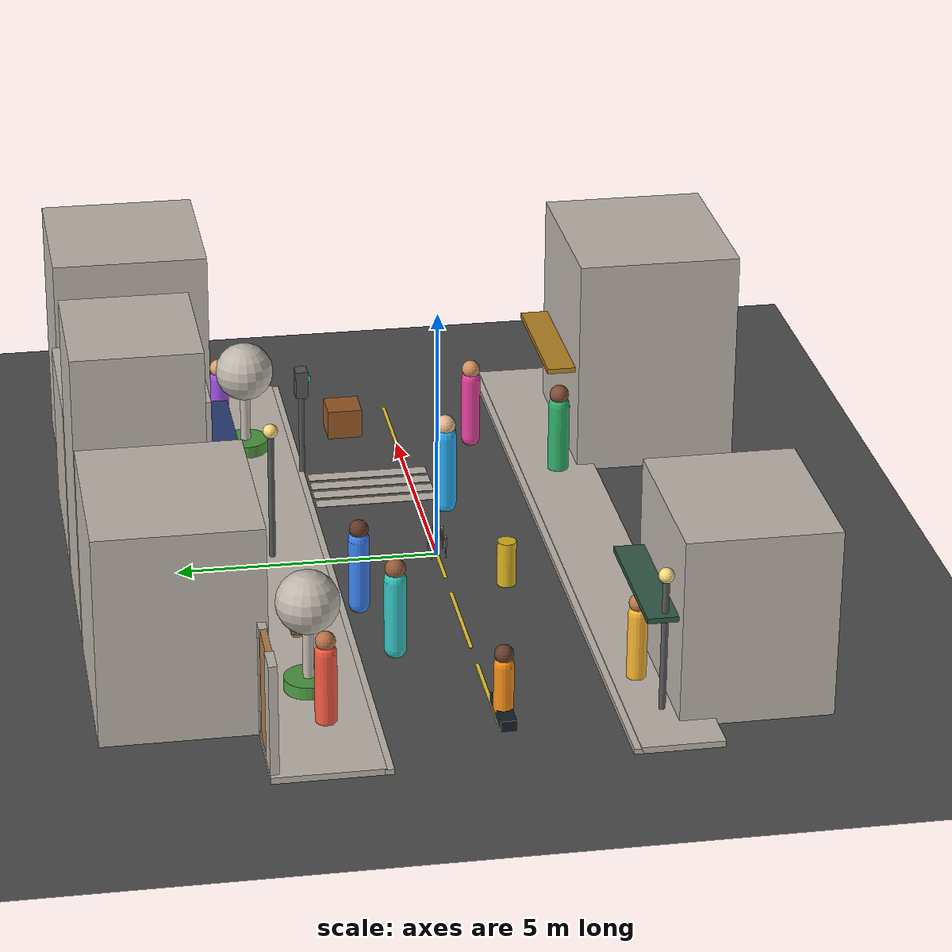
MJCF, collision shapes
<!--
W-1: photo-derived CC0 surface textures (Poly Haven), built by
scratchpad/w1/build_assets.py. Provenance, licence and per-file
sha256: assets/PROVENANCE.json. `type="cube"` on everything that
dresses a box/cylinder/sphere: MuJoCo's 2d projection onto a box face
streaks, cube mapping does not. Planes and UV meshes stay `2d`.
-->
<mujoco model="parcel_city_block">
  <!-- Stylized city block for Go2 skill / RL development. -->
  <include file="../../../third_party/unitree_mujoco/unitree_robots/go2/go2.xml"/>
  <compiler meshdir="../../../third_party/unitree_mujoco/unitree_robots/go2/assets"
    texturedir="assets/textures"
    angle="radian" autolimits="true"/>

  <statistic center="0 0 0.4" extent="8"/>

  <visual>
    <headlight diffuse="0.6 0.6 0.6" ambient="0.35 0.35 0.35" specular="0 0 0"/>
    <rgba haze="0.45 0.5 0.55 1"/>
    <global azimuth="-140" elevation="-18"/>
  </visual>

  <asset>
    <texture type="skybox" builtin="gradient" rgb1="0.45 0.62 0.82" rgb2="0.08 0.12 0.18"
      width="512" height="3072"/>
    <texture type="2d" name="asphalt" file="road_asphalt.png"/>
    <texture type="cube" name="sidewalk" file="sidewalk_concrete.png"/>
    <texture type="cube" name="curb_tex" file="curb_concrete.png"/>
    <texture type="cube" name="crosswalk_tex" file="crosswalk_paint.png"/>
    <texture type="cube" name="brick_tex" file="facade_brick.png"/>
    <texture type="cube" name="beige_tex" file="facade_beige.png"/>
    <texture type="cube" name="plaster_tex" file="facade_plaster.png"/>
    <texture type="cube" name="bench_tex" file="bench_wood.png"/>
    <texture type="cube" name="door_tex" file="door_wood.png"/>
    <texture type="cube" name="metal_tex" file="city_metal.png"/>
    <texture type="cube" name="bark_tex" file="tree_bark.png"/>
    <texture type="cube" name="canopy_tex" file="tree_canopy.png"/>
    <texture type="cube" name="grass_tex" file="grass.png"/>

    <material name="asphalt" texture="asphalt" texuniform="true" texrepeat="8 8" reflectance="0.05"/>
    <material name="sidewalk" texture="sidewalk" texuniform="true" texrepeat="1.6 1.6"
      reflectance="0.08"/>
    <material name="building_a" texture="brick_tex" texuniform="true" texrepeat="0.55 0.55"/>
    <material name="building_b" texture="beige_tex" texuniform="true" texrepeat="0.5 0.5"/>
    <material name="building_c" texture="plaster_tex" texuniform="true" texrepeat="0.5 0.5"/>
    <material name="crosswalk" texture="crosswalk_tex" texuniform="false" texrepeat="1 3"/>
    <material name="bench" texture="bench_tex" texuniform="false" texrepeat="3 1"/>
    <material name="curb" texture="curb_tex" texuniform="true" texrepeat="4 4"/>
    <material name="city_grass" texture="grass_tex" texuniform="true" texrepeat="1.4 1.4"/>
    <material name="city_glass" rgba="0.2 0.42 0.56 1" reflectance="0.35"/>
    <material name="city_metal" texture="metal_tex" texuniform="true" texrepeat="1 1"
      rgba="0.45 0.47 0.5 1"/>
    <material name="entry_wall" texture="plaster_tex" texuniform="true" texrepeat="0.9 0.9"/>
    <material name="door_leaf" texture="door_tex" texuniform="true" texrepeat="0.7 0.7"/>
    <material name="tree_bark" texture="bark_tex" texuniform="true" texrepeat="1.5 1.5"/>
    <material name="tree_canopy" texture="canopy_tex" texuniform="true" texrepeat="1.1 1.1"/>
    <material name="crate_wood" texture="bench_tex" texuniform="true" texrepeat="1.6 1.6"
      rgba="0.86 0.7 0.5 1"/>

    <!-- Storefront fascias. Each is one flat UV quad; the sign lettering,
         glazing, mullions and entrance are baked into the image, so a
         storefront is one geom rather than a dozen. -->
    <texture type="2d" name="shopfront_a" file="storefront_a.png"/>
    <texture type="2d" name="shopfront_b" file="storefront_b.png"/>
    <texture type="2d" name="shopfront_c" file="storefront_c.png"/>
    <texture type="2d" name="shopfront_d" file="storefront_d.png"/>
    <material name="shopfront_a" texture="shopfront_a"/>
    <material name="shopfront_b" texture="shopfront_b"/>
    <material name="shopfront_c" texture="shopfront_c"/>
    <material name="shopfront_d" texture="shopfront_d"/>

    <!-- Pedestrian skins. Four silhouettes x six outfits; nine bodies in this
         scene use nine distinct (mesh, texture) pairs so a detector cannot
         memorise one appearance. -->
    <texture type="2d" name="person_1" file="person_1.png"/>
    <texture type="2d" name="person_2" file="person_2.png"/>
    <texture type="2d" name="person_3" file="person_3.png"/>
    <texture type="2d" name="person_4" file="person_4.png"/>
    <texture type="2d" name="person_5" file="person_5.png"/>
    <texture type="2d" name="person_6" file="person_6.png"/>
    <material name="person_1" texture="person_1"/>
    <material name="person_2" texture="person_2"/>
    <material name="person_3" texture="person_3"/>
    <material name="person_4" texture="person_4"/>
    <material name="person_5" texture="person_5"/>
    <material name="person_6" texture="person_6"/>

    <mesh name="human_a" inertia="shell"
      file="../../../../../src/parcel_robot/scenes/assets/meshes/human_a.obj"/>
    <mesh name="human_b" inertia="shell"
      file="../../../../../src/parcel_robot/scenes/assets/meshes/human_b.obj"/>
    <mesh name="human_c" inertia="shell"
      file="../../../../../src/parcel_robot/scenes/assets/meshes/human_c.obj"/>
    <mesh name="human_d" inertia="shell"
      file="../../../../../src/parcel_robot/scenes/assets/meshes/human_d.obj"/>
    <mesh name="shopfront_1" inertia="shell" scale="3.0 1 2.5"
      file="../../../../../src/parcel_robot/scenes/assets/meshes/panel.obj"/>
    <mesh name="shopfront_2" inertia="shell" scale="2.4 1 2.7"
      file="../../../../../src/parcel_robot/scenes/assets/meshes/panel.obj"/>
    <mesh name="shopfront_3" inertia="shell" scale="2.6 1 2.4"
      file="../../../../../src/parcel_robot/scenes/assets/meshes/panel.obj"/>
    <mesh name="shopfront_4" inertia="shell" scale="2.8 1 2.6"
      file="../../../../../src/parcel_robot/scenes/assets/meshes/panel.obj"/>
    <mesh name="shopfront_5" inertia="shell" scale="2.9 1 2.5"
      file="../../../../../src/parcel_robot/scenes/assets/meshes/panel.obj"/>
    <mesh name="shopfront_6" inertia="shell" scale="3.0 1 2.6"
      file="../../../../../src/parcel_robot/scenes/assets/meshes/panel.obj"/>
  </asset>

  <worldbody>
    <light pos="2 1 6" dir="-0.2 -0.1 -1" diffuse="0.8 0.8 0.75" castshadow="true"/>
    <light pos="-3 -2 5" dir="0.3 0.2 -1" diffuse="0.35 0.35 0.4"/>

    <!-- Road -->
    <geom name="road" type="plane" size="12 12 0.05" material="asphalt" friction="0.9"/>

    <!-- Sidewalk strip -->
    <geom name="sidewalk" type="box" pos="0 3.2 0.06" size="8 1.0 0.06" material="sidewalk"/>
    <geom name="curb" type="box" pos="0 2.15 0.05" size="8 0.08 0.05" material="curb"/>
    <geom name="sidewalk_south" type="box" pos="0 -3.0 0.06" size="8 0.75 0.06" material="sidewalk"/>
    <geom name="curb_south" type="box" pos="0 -2.2 0.05" size="8 0.08 0.05" material="curb"/>

    <!-- Lane markings make heading and motion easier to judge. -->
    <geom name="lane_1" type="box" pos="-5.5 0 0.003" size="1.1 0.035 0.003" rgba="0.92 0.78 0.18 1"/>
    <geom name="lane_2" type="box" pos="-2.7 0 0.003" size="1.1 0.035 0.003" rgba="0.92 0.78 0.18 1"/>
    <geom name="lane_3" type="box" pos="0.1 0 0.003" size="1.1 0.035 0.003" rgba="0.92 0.78 0.18 1"/>
    <geom name="lane_4" type="box" pos="5.7 0 0.003" size="1.1 0.035 0.003" rgba="0.92 0.78 0.18 1"/>

    <!-- Crosswalk stripes -->
    <geom name="xw1" type="box" pos="2.5 0.8 0.002" size="0.15 1.2 0.002" material="crosswalk"/>
    <geom name="xw2" type="box" pos="2.9 0.8 0.002" size="0.15 1.2 0.002" material="crosswalk"/>
    <geom name="xw3" type="box" pos="3.3 0.8 0.002" size="0.15 1.2 0.002" material="crosswalk"/>
    <geom name="xw4" type="box" pos="3.7 0.8 0.002" size="0.15 1.2 0.002" material="crosswalk"/>

    <!-- Buildings -->
    <geom name="bldg_1" type="box" pos="-4.5 5.5 2.0" size="1.8 1.5 2.0" material="building_a"/>
    <geom name="bldg_2" type="box" pos="-1.0 5.8 2.8" size="1.4 1.2 2.8" material="building_b"/>
    <geom name="bldg_3" type="box" pos="2.2 5.6 1.6" size="1.5 1.4 1.6" material="building_c"/>
    <geom name="bldg_4" type="box" pos="5.5 5.4 2.4" size="1.6 1.5 2.4" material="building_a"/>
    <geom name="bldg_5" type="box" pos="-5.5 -4.5 1.8" size="1.7 1.4 1.8" material="building_b"/>
    <geom name="bldg_6" type="box" pos="5.0 -5.0 2.2" size="1.8 1.6 2.2" material="building_c"/>

    <geom name="vis_shopfront_1" type="mesh" mesh="shopfront_1" material="shopfront_a"
      pos="-4.5 3.965 0.06" contype="0" conaffinity="0" density="0"/>
    <geom name="vis_shopfront_2" type="mesh" mesh="shopfront_2" material="shopfront_b"
      pos="-1.0 4.565 0.06" contype="0" conaffinity="0" density="0"/>
    <geom name="vis_shopfront_3" type="mesh" mesh="shopfront_3" material="shopfront_c"
      pos="2.2 4.165 0.06" contype="0" conaffinity="0" density="0"/>
    <geom name="vis_shopfront_4" type="mesh" mesh="shopfront_4" material="shopfront_d"
      pos="5.5 3.865 0.06" contype="0" conaffinity="0" density="0"/>
    <geom name="vis_shopfront_5" type="mesh" mesh="shopfront_5" material="shopfront_b"
      pos="-5.5 -3.065 0.06" euler="0 0 3.14159265" contype="0" conaffinity="0" density="0"/>
    <geom name="vis_shopfront_6" type="mesh" mesh="shopfront_6" material="shopfront_d"
      pos="5.0 -3.365 0.06" euler="0 0 3.14159265" contype="0" conaffinity="0" density="0"/>

    <!-- Awnings, on the four faces with no street tree in front of them. -->
    <geom name="vis_awning_2" type="box" pos="-1.0 4.28 2.14" size="1.15 0.28 0.05"
      rgba="0.62 0.20 0.16 1" contype="0" conaffinity="0" density="0"/>
    <geom name="vis_awning_3" type="box" pos="2.2 3.90 1.90" size="1.25 0.28 0.05"
      rgba="0.16 0.24 0.46 1" contype="0" conaffinity="0" density="0"/>
    <geom name="vis_awning_5" type="box" pos="-5.5 -2.82 1.98" size="1.40 0.28 0.05"
      rgba="0.20 0.36 0.28 1" contype="0" conaffinity="0" density="0"/>
    <geom name="vis_awning_6" type="box" pos="5.0 -3.12 2.06" size="1.45 0.28 0.05"
      rgba="0.72 0.52 0.14 1" contype="0" conaffinity="0" density="0"/>

    <!-- Storefront windows and a small planted plaza. -->
    <geom name="window_1" type="box" pos="-4.5 3.99 1.9" size="0.75 0.015 0.7" material="city_glass"/>
    <geom name="window_2" type="box" pos="-1.0 4.59 1.8" size="0.7 0.015 0.8" material="city_glass"/>
    <geom name="window_3" type="box" pos="2.2 4.19 1.4" size="0.75 0.015 0.65" material="city_glass"/>
    <geom name="window_4" type="box" pos="5.5 3.89 1.8" size="0.75 0.015 0.75" material="city_glass"/>
    <geom name="planter_1" type="cylinder" pos="-5.0 3.15 0.18" size="0.45 0.18" material="city_grass"/>
    <geom name="tree_1" type="cylinder" pos="-5.0 3.15 0.9" size="0.10 0.75" material="tree_bark"/>
    <geom name="tree_top_1" type="sphere" pos="-5.0 3.15 1.85" size="0.58" material="tree_canopy"/>
    <geom name="planter_2" type="cylinder" pos="5.0 3.1 0.18" size="0.45 0.18" material="city_grass"/>
    <geom name="tree_2" type="cylinder" pos="5.0 3.1 0.9" size="0.10 0.75" material="tree_bark"/>
    <geom name="tree_top_2" type="sphere" pos="5.0 3.1 1.85" size="0.58" material="tree_canopy"/>

    <geom name="entry_wall_1" type="box" pos="-7.625 4.12 1.17" size="0.275 0.08 1.05"
      material="entry_wall"/>
    <geom name="door_1" type="box" pos="-6.95 4.12 1.17" size="0.4 0.06 1.05"
      material="door_leaf"/>
    <geom name="entry_wall_2" type="box" pos="-6.425 4.12 1.17" size="0.125 0.08 1.05"
      material="entry_wall"/>

    <!-- Street furniture / crossing signals. -->
    <geom name="lamp_post_1" type="cylinder" pos="0.2 3.15 1.35" size="0.06 1.35" material="city_metal"/>
    <geom name="lamp_head_1" type="sphere" pos="0.2 3.15 2.75" size="0.14" rgba="1 0.86 0.5 1"/>
    <geom name="lamp_post_2" type="cylinder" pos="-6.7 -2.9 1.35" size="0.06 1.35" material="city_metal"/>
    <geom name="lamp_head_2" type="sphere" pos="-6.7 -2.9 2.75" size="0.14" rgba="1 0.86 0.5 1"/>
    <geom name="signal_post" type="cylinder" pos="3.85 2.1 1.0" size="0.055 1.0" material="city_metal"/>
    <geom name="signal_box" type="box" pos="3.85 2.1 2.05" size="0.16 0.12 0.28" material="city_metal"/>
    <geom name="signal_walk" type="sphere" pos="3.85 1.97 2.12" size="0.07" rgba="0.2 0.95 0.45 1"/>

    <!-- Bench on sidewalk -->
    <geom name="bench_seat" type="box" pos="-2.5 3.0 0.28" size="0.7 0.22 0.06" material="bench"/>
    <geom name="bench_back" type="box" pos="-2.5 3.18 0.42" size="0.7 0.05 0.18" material="bench"/>
    <geom name="bench_leg_l" type="box" pos="-3.05 3.0 0.14" size="0.05 0.18 0.14" material="bench"/>
    <geom name="bench_leg_r" type="box" pos="-1.95 3.0 0.14" size="0.05 0.18 0.14" material="bench"/>

    <!-- Explicit navigation obstacles used by simulator telemetry. -->
    <!-- Kept outside the owner's default 1.6 m orbit annulus. -->
    <geom name="obstacle_crate" type="box" pos="5.8 1.0 0.3" size="0.35 0.35 0.3"
      material="crate_wood"/>
    <geom name="obstacle_bollard" type="cylinder" pos="-1.4 -1.1 0.45" size="0.18 0.45"
      rgba="0.85 0.7 0.12 1"/>

    <!-- A movable stand-in for the enrolled owner. Perception backends will
         eventually replace this oracle pose with RGB-D + UWB fusion. -->
    <!-- Default commissioning location has a continuously verified 1.6 m
         orbit corridor clear of every static city fixture. -->
    <body name="owner" mocap="true" pos="2.0 -0.5 0">
      <geom name="owner_body" type="capsule" fromto="0 0 0.1 0 0 1.55" size="0.22"
        contype="0" conaffinity="0" rgba="0.15 0.68 0.95 1" group="4"/>
      <geom name="owner_head" type="sphere" pos="0 0 1.78" size="0.2"
        contype="0" conaffinity="0" rgba="0.92 0.72 0.55 1" group="4"/>
      <geom name="vis_owner" type="mesh" mesh="human_d" material="person_3"
        euler="0 0 -0.85" contype="0" conaffinity="0" density="0"/>
    </body>

    <!-- Lightweight living-city actors. The Python route controller advances
         these mocap bodies deterministically and publishes their tracks. -->
    <body name="pedestrian_1" mocap="true" pos="-6.2 3.0 0">
      <geom name="pedestrian_1_body" type="capsule" fromto="0 0 0.15 0 0 1.48" size="0.20"
        contype="0" conaffinity="0" rgba="0.95 0.35 0.25 1" group="4"/>
      <geom name="pedestrian_1_head" type="sphere" pos="0 0 1.7" size="0.18"
        contype="0" conaffinity="0" rgba="0.72 0.45 0.28 1" group="4"/>
      <geom name="vis_pedestrian_1" type="mesh" mesh="human_a" material="person_1"
        euler="0 0 0.62" contype="0" conaffinity="0" density="0"/>
    </body>
    <body name="pedestrian_2" mocap="true" pos="5.7 3.55 0">
      <geom name="pedestrian_2_body" type="capsule" fromto="0 0 0.15 0 0 1.42" size="0.19"
        contype="0" conaffinity="0" rgba="0.62 0.32 0.9 1" group="4"/>
      <geom name="pedestrian_2_head" type="sphere" pos="0 0 1.64" size="0.18"
        contype="0" conaffinity="0" rgba="0.86 0.62 0.44 1" group="4"/>
      <geom name="vis_pedestrian_2" type="mesh" mesh="human_b" material="person_2"
        euler="0 0 2.60" contype="0" conaffinity="0" density="0"/>
    </body>
    <body name="pedestrian_3" mocap="true" pos="3.15 -3.0 0">
      <geom name="pedestrian_3_body" type="capsule" fromto="0 0 0.15 0 0 1.5" size="0.21"
        contype="0" conaffinity="0" rgba="0.18 0.68 0.42 1" group="4"/>
      <geom name="pedestrian_3_head" type="sphere" pos="0 0 1.73" size="0.19"
        contype="0" conaffinity="0" rgba="0.5 0.3 0.2 1" group="4"/>
      <geom name="vis_pedestrian_3" type="mesh" mesh="human_c" material="person_3"
        euler="0 0 -1.20" contype="0" conaffinity="0" density="0"/>
    </body>
    <body name="pedestrian_4" mocap="true" pos="-5.5 -2.7 0">
      <geom name="pedestrian_4_body" type="capsule" fromto="0 0 0.15 0 0 1.38" size="0.18"
        contype="0" conaffinity="0" rgba="0.96 0.7 0.18 1" group="4"/>
      <geom name="pedestrian_4_head" type="sphere" pos="0 0 1.6" size="0.17"
        contype="0" conaffinity="0" rgba="0.72 0.48 0.3 1" group="4"/>
      <geom name="vis_pedestrian_4" type="mesh" mesh="human_d" material="person_4"
        euler="0 0 1.95" contype="0" conaffinity="0" density="0"/>
    </body>
    <body name="pedestrian_5" mocap="true" pos="-2.0 1.8 0">
      <geom name="pedestrian_5_body" type="capsule" fromto="0 0 0.15 0 0 1.46" size="0.20"
        contype="0" conaffinity="0" rgba="0.22 0.5 0.92 1" group="4"/>
      <geom name="pedestrian_5_head" type="sphere" pos="0 0 1.68" size="0.18"
        contype="0" conaffinity="0" rgba="0.38 0.22 0.15 1" group="4"/>
      <geom name="vis_pedestrian_5" type="mesh" mesh="human_a" material="person_5"
        euler="0 0 -2.35" contype="0" conaffinity="0" density="0"/>
    </body>
    <body name="pedestrian_6" mocap="true" pos="4.8 -1.5 0">
      <geom name="pedestrian_6_body" type="capsule" fromto="0 0 0.15 0 0 1.44" size="0.19"
        contype="0" conaffinity="0" rgba="0.9 0.25 0.62 1" group="4"/>
      <geom name="pedestrian_6_head" type="sphere" pos="0 0 1.66" size="0.18"
        contype="0" conaffinity="0" rgba="0.82 0.57 0.38 1" group="4"/>
      <geom name="vis_pedestrian_6" type="mesh" mesh="human_b" material="person_6"
        euler="0 0 0.20" contype="0" conaffinity="0" density="0"/>
    </body>
    <body name="pedestrian_7" mocap="true" pos="-3.8 1.4 0">
      <geom name="pedestrian_7_body" type="capsule" fromto="0 0 0.15 0 0 1.52" size="0.21"
        contype="0" conaffinity="0" rgba="0.2 0.76 0.75 1" group="4"/>
      <geom name="pedestrian_7_head" type="sphere" pos="0 0 1.75" size="0.19"
        contype="0" conaffinity="0" rgba="0.58 0.36 0.22 1" group="4"/>
      <geom name="vis_pedestrian_7" type="mesh" mesh="human_c" material="person_1"
        euler="0 0 3.05" contype="0" conaffinity="0" density="0"/>
    </body>
    <body name="cyclist_1" mocap="true" pos="-7.0 0 0">
      <geom name="cyclist_1_bike" type="box" pos="0 0 0.48" size="0.52 0.14 0.10"
        contype="0" conaffinity="0" rgba="0.08 0.12 0.15 1"/>
      <geom name="cyclist_1_body" type="capsule" fromto="0 0 0.58 0 0 1.4" size="0.18"
        contype="0" conaffinity="0" rgba="0.95 0.55 0.08 1" group="4"/>
      <geom name="cyclist_1_head" type="sphere" pos="0 0 1.62" size="0.17"
        contype="0" conaffinity="0" rgba="0.4 0.25 0.16 1" group="4"/>
      <geom name="vis_cyclist_1" type="mesh" mesh="human_b" material="person_5"
        pos="-0.04 0 0.14" contype="0" conaffinity="0" density="0"/>
    </body>
  </worldbody>
</mujoco>

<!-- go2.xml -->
<mujoco model="go2">
  <compiler angle="radian" meshdir="assets" autolimits="true" />

  <option cone="elliptic" impratio="100" />

  <default>
    <default class="go2">
      <geom friction="0.4" margin="0.001" condim="1"/>
      <joint axis="0 1 0" damping="0.1" armature="0.01" frictionloss="0.2"/>
      <motor ctrlrange="-23.7 23.7"/>
      <default class="abduction">
        <joint axis="1 0 0" range="-1.0472 1.0472"/>
      </default>
      <default class="hip">
        <default class="front_hip">
          <joint range="-1.5708 3.4907"/>
        </default>
        <default class="back_hip">
          <joint range="-0.5236 4.5379"/>
        </default>
      </default>
      <default class="knee">
        <joint range="-2.7227 -0.83776"/>
        <motor ctrlrange="-45.43 45.43"/>
      </default>
      <default class="visual">
        <geom type="mesh" contype="0" conaffinity="0" group="2"/>
      </default>
      <default class="collision">
        <geom group="3"/>
        <default class="foot">
          <geom size="0.022" pos="-0.002 0 -0.213" priority="1" condim="6"
            friction="0.4 0.02 0.01"/>
        </default>
      </default>
    </default>
  </default>

  <asset>
    <material name="metal" rgba=".9 .95 .95 1" />
    <material name="black" rgba="0 0 0 1" />
    <material name="white" rgba="1 1 1 1" />
    <material name="gray" rgba="0.671705 0.692426 0.774270 1" />

    <mesh file="base_0.obj" />
    <mesh file="base_1.obj" />
    <mesh file="base_2.obj" />
    <mesh file="base_3.obj" />
    <mesh file="base_4.obj" />
    <mesh file="hip_0.obj" />
    <mesh file="hip_1.obj" />
    <mesh file="thigh_0.obj" />
    <mesh file="thigh_1.obj" />
    <mesh file="thigh_mirror_0.obj" />
    <mesh file="thigh_mirror_1.obj" />
    <mesh file="calf_0.obj" />
    <mesh file="calf_1.obj" />
    <mesh file="calf_mirror_0.obj" />
    <mesh file="calf_mirror_1.obj" />
    <mesh file="foot.obj" />
  </asset>

  <worldbody>
    <body name="base_link" pos="0 0 0.445" childclass="go2">
      <inertial pos="0.021112 0 -0.005366" quat="-0.000543471 0.713435 -0.00173769 0.700719"
        mass="6.921"
        diaginertia="0.107027 0.0980771 0.0244531" />
      <freejoint />
      <geom mesh="base_0" material="black" class="visual" />
      <geom mesh="base_1" material="black" class="visual" />
      <geom mesh="base_2" material="black" class="visual" />
      <geom mesh="base_3" material="white" class="visual" />
      <geom mesh="base_4" material="gray" class="visual" />
      <geom size="0.1881 0.04675 0.057" type="box" class="collision" />
      <geom size="0.05 0.045" pos="0.285 0 0.01" type="cylinder" class="collision" />
      <geom size="0.047" pos="0.293 0 -0.06" class="collision" />
      <site name="imu" pos="-0.02557 0 0.04232" />
      <camera
        name="Gurukul_depth"
        pos="0.33 0 0.08"
        xyaxes="0 -1 0 0.3420201433 0 0.9396926208"
        resolution="106 60"
        focal="0.11041 0.11041"
        sensorsize="0.20955 0.12240"
        principalpixel="0 0"
      />
      <body name="FL_hip" pos="0.1934 0.0465 0">
        <inertial pos="-0.0054 0.00194 -0.000105" quat="0.497014 0.499245 0.505462 0.498237"
          mass="0.678"
          diaginertia="0.00088403 0.000596003 0.000479967" />
        <joint name="FL_hip_joint" class="abduction" />
        <geom mesh="hip_0" material="metal" class="visual" />
        <geom mesh="hip_1" material="gray" class="visual" />
        <geom size="0.046 0.02" pos="0 0.08 0" quat="1 1 0 0" type="cylinder" class="collision" />
        <body name="FL_thigh" pos="0 0.0955 0">
          <inertial pos="-0.00374 -0.0223 -0.0327" quat="0.829533 0.0847635 -0.0200632 0.551623"
            mass="1.152"
            diaginertia="0.00594973 0.00584149 0.000878787" />
          <joint name="FL_thigh_joint" class="front_hip" />
          <geom mesh="thigh_0" material="metal" class="visual" />
          <geom mesh="thigh_1" material="gray" class="visual" />
          <geom size="0.1065 0.01225 0.017" pos="0 0 -0.1065" quat="0.707107 0 0.707107 0"
            type="box" class="collision" />
          <body name="FL_calf" pos="0 0 -0.213">
            <inertial pos="0.00629595 -0.000622121 -0.141417"
              quat="0.710672 0.00154099 -0.00450087 0.703508"
              mass="0.241352" diaginertia="0.0014901 0.00146356 5.31397e-05" />
            <joint name="FL_calf_joint" class="knee" />
            <geom mesh="calf_0" material="gray" class="visual" />
            <geom mesh="calf_1" material="black" class="visual" />
            <geom size="0.012 0.06" pos="0.008 0 -0.06" quat="0.994493 0 -0.104807 0"
              type="cylinder" class="collision" />
            <geom size="0.011 0.0325" pos="0.02 0 -0.148" quat="0.999688 0 0.0249974 0"
              type="cylinder" class="collision" />
            <geom pos="0 0 -0.213" mesh="foot" class="visual" material="black" />
            <geom name="FL" class="foot" />
            <body name="FL_foot" pos="0 0 -0.213" />
          </body>
        </body>
      </body>
      <body name="FR_hip" pos="0.1934 -0.0465 0">
        <inertial pos="-0.0054 -0.00194 -0.000105" quat="0.498237 0.505462 0.499245 0.497014"
          mass="0.678"
          diaginertia="0.00088403 0.000596003 0.000479967" />
        <joint name="FR_hip_joint" class="abduction" />
        <geom mesh="hip_0" material="metal" class="visual" quat="4.63268e-05 1 0 0" />
        <geom mesh="hip_1" material="gray" class="visual" quat="4.63268e-05 1 0 0" />
        <geom size="0.046 0.02" pos="0 -0.08 0" quat="0.707107 0.707107 0 0" type="cylinder"
          class="collision" />
        <body name="FR_thigh" pos="0 -0.0955 0">
          <inertial pos="-0.00374 0.0223 -0.0327" quat="0.551623 -0.0200632 0.0847635 0.829533"
            mass="1.152"
            diaginertia="0.00594973 0.00584149 0.000878787" />
          <joint name="FR_thigh_joint" class="front_hip" />
          <geom mesh="thigh_mirror_0" material="metal" class="visual" />
          <geom mesh="thigh_mirror_1" material="gray" class="visual" />
          <geom size="0.1065 0.01225 0.017" pos="0 0 -0.1065" quat="0.707107 0 0.707107 0"
            type="box" class="collision" />
          <body name="FR_calf" pos="0 0 -0.213">
            <inertial pos="0.00629595 0.000622121 -0.141417"
              quat="0.703508 -0.00450087 0.00154099 0.710672"
              mass="0.241352" diaginertia="0.0014901 0.00146356 5.31397e-05" />
            <joint name="FR_calf_joint" class="knee" />
            <geom mesh="calf_mirror_0" material="gray" class="visual" />
            <geom mesh="calf_mirror_1" material="black" class="visual" />
            <geom size="0.013 0.06" pos="0.01 0 -0.06" quat="0.995004 0 -0.0998334 0"
              type="cylinder" class="collision" />
            <geom size="0.011 0.0325" pos="0.02 0 -0.148" quat="0.999688 0 0.0249974 0"
              type="cylinder" class="collision" />
            <geom pos="0 0 -0.213" mesh="foot" class="visual" material="black" />
            <geom name="FR" class="foot" />
            <body name="FR_foot" pos="0 0 -0.213" />
          </body>
        </body>
      </body>
      <body name="RL_hip" pos="-0.1934 0.0465 0">
        <inertial pos="0.0054 0.00194 -0.000105" quat="0.505462 0.498237 0.497014 0.499245"
          mass="0.678"
          diaginertia="0.00088403 0.000596003 0.000479967" />
        <joint name="RL_hip_joint" class="abduction" />
        <geom mesh="hip_0" material="metal" class="visual" quat="4.63268e-05 0 1 0" />
        <geom mesh="hip_1" material="gray" class="visual" quat="4.63268e-05 0 1 0" />
        <geom size="0.046 0.02" pos="0 0.08 0" quat="0.707107 0.707107 0 0" type="cylinder"
          class="collision" />
        <body name="RL_thigh" pos="0 0.0955 0">
          <inertial pos="-0.00374 -0.0223 -0.0327" quat="0.829533 0.0847635 -0.0200632 0.551623"
            mass="1.152"
            diaginertia="0.00594973 0.00584149 0.000878787" />
          <joint name="RL_thigh_joint" class="back_hip" />
          <geom mesh="thigh_0" material="metal" class="visual" />
          <geom mesh="thigh_1" material="gray" class="visual" />
          <geom size="0.1065 0.01225 0.017" pos="0 0 -0.1065" quat="0.707107 0 0.707107 0"
            type="box" class="collision" />
          <body name="RL_calf" pos="0 0 -0.213">
            <inertial pos="0.00629595 -0.000622121 -0.141417"
              quat="0.710672 0.00154099 -0.00450087 0.703508"
              mass="0.241352" diaginertia="0.0014901 0.00146356 5.31397e-05" />
            <joint name="RL_calf_joint" class="knee" />
            <geom mesh="calf_0" material="gray" class="visual" />
            <geom mesh="calf_1" material="black" class="visual" />
            <geom size="0.013 0.06" pos="0.01 0 -0.06" quat="0.995004 0 -0.0998334 0"
              type="cylinder" class="collision" />
            <geom size="0.011 0.0325" pos="0.02 0 -0.148" quat="0.999688 0 0.0249974 0"
              type="cylinder" class="collision" />
            <geom pos="0 0 -0.213" mesh="foot" class="visual" material="black" />
            <geom name="RL" class="foot" />
            <body name="RL_foot" pos="0 0 -0.213" />
          </body>
        </body>
      </body>
      <body name="RR_hip" pos="-0.1934 -0.0465 0">
        <inertial pos="0.0054 -0.00194 -0.000105" quat="0.499245 0.497014 0.498237 0.505462"
          mass="0.678"
          diaginertia="0.00088403 0.000596003 0.000479967" />
        <joint name="RR_hip_joint" class="abduction" />
        <geom mesh="hip_0" material="metal" class="visual"
          quat="2.14617e-09 4.63268e-05 4.63268e-05 -1" />
        <geom mesh="hip_1" material="gray" class="visual"
          quat="2.14617e-09 4.63268e-05 4.63268e-05 -1" />
        <geom size="0.046 0.02" pos="0 -0.08 0" quat="0.707107 0.707107 0 0" type="cylinder"
          class="collision" />
        <body name="RR_thigh" pos="0 -0.0955 0">
          <inertial pos="-0.00374 0.0223 -0.0327" quat="0.551623 -0.0200632 0.0847635 0.829533"
            mass="1.152"
            diaginertia="0.00594973 0.00584149 0.000878787" />
          <joint name="RR_thigh_joint" class="back_hip" />
          <geom mesh="thigh_mirror_0" material="metal" class="visual" />
          <geom mesh="thigh_mirror_1" material="gray" class="visual" />
          <geom size="0.1065 0.01225 0.017" pos="0 0 -0.1065" quat="0.707107 0 0.707107 0"
            type="box" class="collision" />
          <body name="RR_calf" pos="0 0 -0.213">
            <inertial pos="0.00629595 0.000622121 -0.141417"
              quat="0.703508 -0.00450087 0.00154099 0.710672"
              mass="0.241352" diaginertia="0.0014901 0.00146356 5.31397e-05" />
            <joint name="RR_calf_joint" class="knee" />
            <geom mesh="calf_mirror_0" material="gray" class="visual" />
            <geom mesh="calf_mirror_1" material="black" class="visual" />
            <geom size="0.013 0.06" pos="0.01 0 -0.06" quat="0.995004 0 -0.0998334 0"
              type="cylinder" class="collision" />
            <geom size="0.011 0.0325" pos="0.02 0 -0.148" quat="0.999688 0 0.0249974 0"
              type="cylinder" class="collision" />
            <geom pos="0 0 -0.213" mesh="foot" class="visual" material="black" />
            <geom name="RR" class="foot" />
            <body name="RR_foot" pos="0 0 -0.213" />
          </body>
        </body>
      </body>
    </body>
  </worldbody>

  <actuator>
    <motor class="abduction" name="FR_hip" joint="FR_hip_joint" />
    <motor class="hip" name="FR_thigh" joint="FR_thigh_joint" />
    <motor class="knee" name="FR_calf" joint="FR_calf_joint" />
    <motor class="abduction" name="FL_hip" joint="FL_hip_joint" />
    <motor class="hip" name="FL_thigh" joint="FL_thigh_joint" />
    <motor class="knee" name="FL_calf" joint="FL_calf_joint" />
    <motor class="abduction" name="RR_hip" joint="RR_hip_joint" />
    <motor class="hip" name="RR_thigh" joint="RR_thigh_joint" />
    <motor class="knee" name="RR_calf" joint="RR_calf_joint" />
    <motor class="abduction" name="RL_hip" joint="RL_hip_joint" />
    <motor class="hip" name="RL_thigh" joint="RL_thigh_joint" />
    <motor class="knee" name="RL_calf" joint="RL_calf_joint" />
  </actuator>

  <sensor>
    <jointpos name="FR_hip_pos" joint="FR_hip_joint" />
    <jointpos name="FR_thigh_pos" joint="FR_thigh_joint" />
    <jointpos name="FR_calf_pos" joint="FR_calf_joint" />
    <jointpos name="FL_hip_pos" joint="FL_hip_joint" />
    <jointpos name="FL_thigh_pos" joint="FL_thigh_joint" />
    <jointpos name="FL_calf_pos" joint="FL_calf_joint" />
    <jointpos name="RR_hip_pos" joint="RR_hip_joint" />
    <jointpos name="RR_thigh_pos" joint="RR_thigh_joint" />
    <jointpos name="RR_calf_pos" joint="RR_calf_joint" />
    <jointpos name="RL_hip_pos" joint="RL_hip_joint" />
    <jointpos name="RL_thigh_pos" joint="RL_thigh_joint" />
    <jointpos name="RL_calf_pos" joint="RL_calf_joint" />

    <jointvel name="FR_hip_vel" joint="FR_hip_joint" />
    <jointvel name="FR_thigh_vel" joint="FR_thigh_joint" />
    <jointvel name="FR_calf_vel" joint="FR_calf_joint" />
    <jointvel name="FL_hip_vel" joint="FL_hip_joint" />
    <jointvel name="FL_thigh_vel" joint="FL_thigh_joint" />
    <jointvel name="FL_calf_vel" joint="FL_calf_joint" />
    <jointvel name="RR_hip_vel" joint="RR_hip_joint" />
    <jointvel name="RR_thigh_vel" joint="RR_thigh_joint" />
    <jointvel name="RR_calf_vel" joint="RR_calf_joint" />
    <jointvel name="RL_hip_vel" joint="RL_hip_joint" />
    <jointvel name="RL_thigh_vel" joint="RL_thigh_joint" />
    <jointvel name="RL_calf_vel" joint="RL_calf_joint" />

    <jointactuatorfrc name="FR_hip_torque" joint="FR_hip_joint" noise="0.01" />
    <jointactuatorfrc name="FR_thigh_torque" joint="FR_thigh_joint" noise="0.01" />
    <jointactuatorfrc name="FR_calf_torque" joint="FR_calf_joint" noise="0.01" />
    <jointactuatorfrc name="FL_hip_torque" joint="FL_hip_joint" noise="0.01" />
    <jointactuatorfrc name="FL_thigh_torque" joint="FL_thigh_joint" noise="0.01" />
    <jointactuatorfrc name="FL_calf_torque" joint="FL_calf_joint" noise="0.01" />
    <jointactuatorfrc name="RR_hip_torque" joint="RR_hip_joint" noise="0.01" />
    <jointactuatorfrc name="RR_thigh_torque" joint="RR_thigh_joint" noise="0.01" />
    <jointactuatorfrc name="RR_calf_torque" joint="RR_calf_joint" noise="0.01" />
    <jointactuatorfrc name="RL_hip_torque" joint="RL_hip_joint" noise="0.01" />
    <jointactuatorfrc name="RL_thigh_torque" joint="RL_thigh_joint" noise="0.01" />
    <jointactuatorfrc name="RL_calf_torque" joint="RL_calf_joint" noise="0.01" />

    <framequat name="imu_quat" objtype="site" objname="imu" />
    <gyro name="imu_gyro" site="imu" />
    <accelerometer name="imu_acc" site="imu" />

    <framepos name="frame_pos" objtype="site" objname="imu" />
    <framelinvel name="frame_vel" objtype="site" objname="imu" />
  </sensor>

  <keyframe>
    <key name="home" qpos="0 0 0.27 1 0 0 0 0 0.9 -1.8 0 0.9 -1.8 0 0.9 -1.8 0 0.9 -1.8"
      ctrl="0 0.9 -1.8 0 0.9 -1.8 0 0.9 -1.8 0 0.9 -1.8" />
  </keyframe>
</mujoco>
